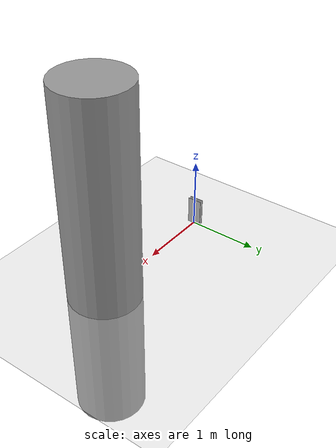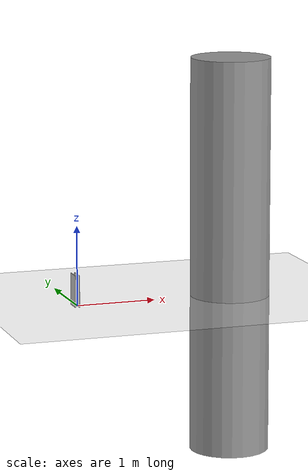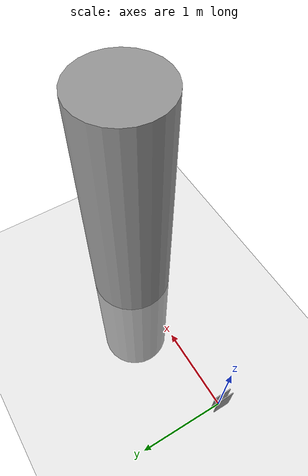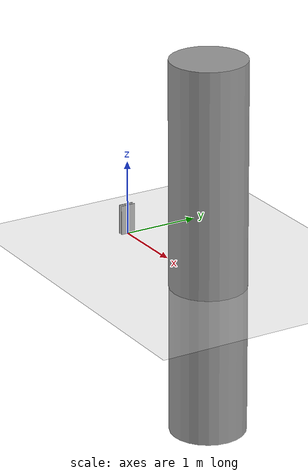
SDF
<sdf version="1.4">
 <world name="default">
  <light name="sun" type="directional">
   <pose>0 0 10 0 -0 0</pose>
   <diffuse>0.8 0.8 0.8 1</diffuse>
   <specular>0.2 0.2 0.2 1</specular>
   <attenuation>
    <range>1000</range>
    <constant>0.9</constant>
    <linear>0.01</linear>
    <quadratic>0.001</quadratic>
   </attenuation>
   <direction>-0.5 0.1 -0.9</direction>
  </light>
  <model name="ground_plane">
   <static>1</static>
   <link name="link">
    <collision name="collision">
     <geometry><plane><normal>0 0 1</normal><size>100 100</size></plane></geometry>
     <surface><friction><ode><mu>100</mu><mu2>50</mu2></ode></friction></surface>
    </collision>
    <visual name="visual">
     <cast_shadows>0</cast_shadows>
     <geometry><plane><normal>0 0 1</normal><size>100 100</size></plane></geometry>
     <material>
      <script><uri>file://media/materials/scripts/gazebo.material</uri><name>Gazebo/Grey</name></script>
     </material>
    </visual>
    <velocity_decay><linear>0</linear><angular>0</angular></velocity_decay>
   </link>
  </model>
  <physics type="ode">
   <max_step_size>0.001</max_step_size>
   <real_time_factor>1</real_time_factor>
   <real_time_update_rate>1000</real_time_update_rate>
   <gravity>0 0 -9.8</gravity>
  </physics>
  <scene><ambient>0.4 0.4 0.4 1</ambient><background>0.7 0.7 0.7 1</background><shadows>1</shadows></scene>
  <spherical_coordinates>
   <surface_model>EARTH_WGS84</surface_model>
   <latitude_deg>0</latitude_deg>
   <longitude_deg>0</longitude_deg>
   <elevation>0</elevation>
   <heading_deg>0</heading_deg>
  </spherical_coordinates>
  <model name="unit_cylinder_2">
   <pose>2.0 1e-06 0.5 0 -0 2e-06</pose>
   <link name="link">
    <inertial>
     <mass>1</mass>
     <inertia><ixx>1</ixx><ixy>0</ixy><ixz>0</ixz><iyy>1</iyy><iyz>0</iyz><izz>1</izz></inertia>
    </inertial>
    <collision name="collision">
     <geometry><cylinder><radius>0.5</radius><length>5</length></cylinder></geometry>
    </collision>
    <visual name="visual">
     <geometry><cylinder><radius>0.5</radius><length>5</length></cylinder></geometry>
     <material>
      <script><uri>file://media/materials/scripts/gazebo.material</uri><name>Gazebo/Grey</name></script>
     </material>
    </visual>
    <velocity_decay><linear>0</linear><angular>0</angular></velocity_decay>
   </link>
   <static>1</static>
  </model>
  <model name="radar_demo"><include><static>true</static><uri>model://ray_radar</uri></include></model>
 </world>
</sdf>

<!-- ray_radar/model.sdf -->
<sdf version="1.5">

<model name="teamH8Radar">
  <!-- Give the base link a unique name -->
  <link name="AWR1642BOOST">

    <!-- Offset the base by half the lenght of the cylinder -->
    <pose>0 0 0.2 1.5708 0 1.5708</pose>
      <inertial>
      <mass>1.2</mass>
      <inertia>
        <ixx>0.001087473</ixx>
        <iyy>0.001087473</iyy>
        <izz>0.001092437</izz>
        <ixy>0</ixy>
        <ixz>0</ixz>
        <iyz>0</iyz>
      </inertia>
    </inertial>
    <collision name="AWR1642BOOST_collision">
      <geometry>
        <box>
          <size> 0.2 0.4 0.01 </size>
        </box>
      </geometry>
    </collision>

    <!-- The visual is mostly a copy of the collision -->
    <visual name="AWR1642BOOST_visual">
      <geometry>
        <box>
          <size> 0.2 0.4 0.01 </size>
        </box>
      </geometry>
    </visual>

<sensor name="sensor_ray" type="ray">
    <visualize>true</visualize>
    <pose>0.1 0.0 0.0 -1.57079632679 -1.57079632679 0.0</pose>
    <ray>
      <scan>
        <horizontal>
          <samples>100</samples>
          <min_angle>-0.523599</min_angle>
          <max_angle>0.523599</max_angle>
        </horizontal>
        <vertical>
          <samples>16</samples>
          <min_angle>-0.261799</min_angle>
          <max_angle>0.261799</max_angle>
        </vertical>
      </scan>
      <range>
        <min>0.05</min>
        <max>80.0</max>
      </range>
    </ray>
    <plugin name="plugin_1" filename="libgazebo_ros_block_laser.so">
      <gaussianNoise>0.00</gaussianNoise>
      <hokuyoMinIntensity>1</hokuyoMinIntensity>
      <alwaysOn>true</alwaysOn>
      <updateRate>5</updateRate>
      <topicName>radar</topicName>
      <frameName>base_link</frameName>
    </plugin>
  </sensor>
  </link>

  <!-- Give the base link a unique name -->
  <link name="DCA1000EVM">

    <!-- offset to simulate the  -->
    <pose>-0.05 0 0.2 1.5708 0 1.5708</pose>
   <inertial>
     <mass>0.1</mass>
     <inertia>
       <ixx>0.000090623</ixx>
       <iyy>0.000090623</iyy>
       <izz>0.000091036</izz>
       <ixy>0</ixy>
       <ixz>0</ixz>
       <iyz>0</iyz>
     </inertia>
   </inertial>
    <collision name="DCA1000EVM_collision">
      <geometry>
        <box>
          <size> 0.2 0.4 0.01 </size>
        </box>
      </geometry>
    </collision>

    <!-- The visual is mostly a copy of the collision -->
    <visual name="DCA1000EVM_visual">
      <geometry>
        <box>
          <size> 0.2 0.4 0.01 </size>
        </box>
      </geometry>
    </visual>
  </link>

</model>
</sdf>
